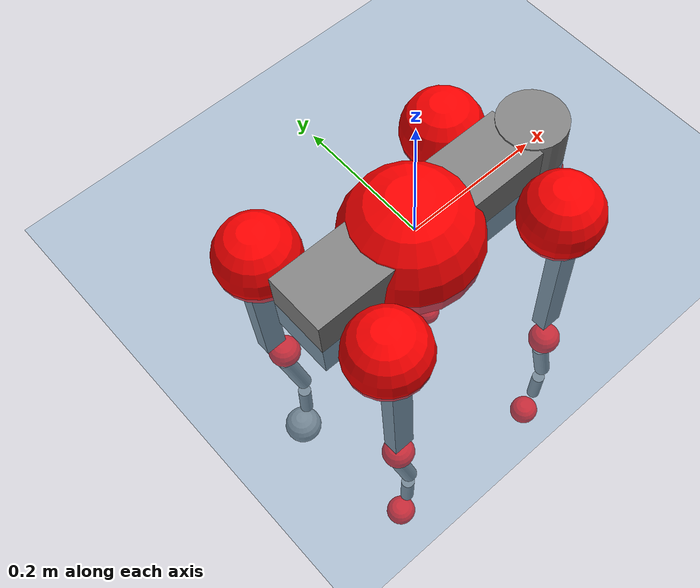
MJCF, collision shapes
<mujoco model="go2">
  <compiler angle="radian" assetdir="assets" balanceinertia="true" inertiafromgeom="false"/>

  <option timestep="0.005" density="1.2" viscosity="2e-05"/>

  <size nkey="1"/>

  <visual>
    <quality shadowsize="8192"/>
    <map shadowclip="0.5"/>
  </visual>

  <default>
    <default class="/">
      <geom contype="0" conaffinity="0" group="1" solref="-1000 -80"/>
      <site size="0.01 0.005 0.005" group="5"/>
      <general forcelimited="true" biastype="affine" gainprm="20" biasprm="0 -20 -0.5"/>
      <default class="go2">
        <joint armature="0.01" damping="0.01" frictionloss="0.2"/>
        <geom condim="1" margin="0.001"/>
        <default class="visual">
          <geom type="mesh" group="2"/>
        </default>
        <default class="collision">
          <geom group="3"/>
          <default class="foot">
            <geom size="0.022 0 0" condim="6" priority="1" friction="0.8 0.02 0.01" solimp="0.015 1 0.022"/>
          </default>
        </default>
        <default class="reward_collision_sphere">
          <geom group="5" rgba="1 0 0 1"/>
        </default>
      </default>
    </default>
  </default>

  <asset>
    <texture type="skybox" colorspace="auto" name="//unnamed_texture_0" builtin="gradient" rgb1="0.95 0.95 0.95" rgb2="0.95 0.95 0.95" width="100" height="600"/>
    <texture type="2d" colorspace="auto" name="texplane" builtin="checker" rgb1="0.345 0.575 0.748" rgb2="0.345 0.575 0.748" markrgb="1 1 1" width="512" height="512"/>
    <material name="MatPlane" class="/" texture="texplane" texuniform="true" texrepeat="2 2" specular="0.9"/>
    <material name="metal" class="/" rgba="0.9 0.95 0.95 1"/>
    <material name="black" class="/" rgba="0 0 0 1"/>
    <material name="white" class="/"/>
    <material name="gray" class="/" rgba="0.671705 0.692426 0.77427 1"/>
    <mesh name="base_0" class="/" file="base_0.obj"/>
    <mesh name="base_1" class="/" file="base_1.obj"/>
    <mesh name="base_2" class="/" file="base_2.obj"/>
    <mesh name="base_3" class="/" file="base_3.obj"/>
    <mesh name="base_4" class="/" file="base_4.obj"/>
    <mesh name="hip_0" class="/" file="hip_0.obj"/>
    <mesh name="hip_1" class="/" file="hip_1.obj"/>
    <mesh name="thigh_0" class="/" file="thigh_0.obj"/>
    <mesh name="thigh_1" class="/" file="thigh_1.obj"/>
    <mesh name="thigh_mirror_0" class="/" file="thigh_mirror_0.obj"/>
    <mesh name="thigh_mirror_1" class="/" file="thigh_mirror_1.obj"/>
    <mesh name="calf_0" class="/" file="calf_0.obj"/>
    <mesh name="calf_1" class="/" file="calf_1.obj"/>
    <mesh name="calf_mirror_0" class="/" file="calf_mirror_0.obj"/>
    <mesh name="calf_mirror_1" class="/" file="calf_mirror_1.obj"/>
    <mesh name="foot" class="/" file="foot.obj"/>
  </asset>

  <worldbody>
    <geom name="floor" class="/" size="100 100 0.125" type="plane" group="0" material="MatPlane"/>
    <light name="toplight_shadow" class="/" pos="0 0 5" dir="0.0990148 0.0990148 -0.990148" type="directional" ambient="0.04 0.04 0.04" diffuse="0.55 0.55 0.55" specular="0.12 0.12 0.12"/>
    <light name="toplight_fill" class="/" pos="0 0 5" dir="0.0990148 0.0990148 -0.990148" type="directional" castshadow="false" ambient="0.04 0.04 0.04" diffuse="0.3 0.3 0.3" specular="0.08 0.08 0.08"/>
    <body name="trunk" childclass="go2" pos="-0.0135633 -0.0068192 0.00188204" quat="0.999997 -0.0016208 -0.00144066 0.000950466">
      <inertial pos="0.0168021 0.00188453 -0.00695624" quat="0.0403153 0.706694 0.00941406 0.706307" mass="6.3882" diaginertia="0.0164147 0.0232281 0.121923"/>
      <joint name="//unnamed_joint_0" type="free" armature="0" damping="0" frictionloss="0"/>
      <geom name="//unnamed_geom_1" class="visual" material="black" mesh="base_0"/>
      <geom name="//unnamed_geom_2" class="visual" material="black" mesh="base_1"/>
      <geom name="//unnamed_geom_3" class="visual" material="black" mesh="base_2"/>
      <geom name="//unnamed_geom_4" class="visual" material="white" mesh="base_3"/>
      <geom name="//unnamed_geom_5" class="visual" material="gray" mesh="base_4"/>
      <geom name="trunk_1" class="collision" size="0.18333 0.0455644 0.0555545" type="box"/>
      <geom name="trunk_2" class="collision" size="0.048732 0.0438588" pos="0.21038 0 0.0138957" type="cylinder"/>
      <geom name="trunk_3" class="collision" size="0.0458081" pos="0.216285 0 -0.083374"/>
      <geom name="//unnamed_geom_9" class="reward_collision_sphere" size="0.097464"/>
      <geom name="//unnamed_geom_10" class="reward_collision_sphere" size="0.0584784" pos="0.206689 0 -0.0625305"/>
      <site name="imu" pos="-0.0448984 0.0153957 0.134185" size="0.0097464"/>
      <camera name="track" pos="0 -1.59236 0" quat="0.707107 0.707107 0 0" mode="trackcom"/>
      <camera name="ego_camera" pos="0.230311 0 0.0625305" quat="-0.5 -0.5 0.5 0.5"/>
      <body name="FL_hip" pos="0.141144 0.036355 0.00920191" quat="0.99998 0.00403598 -0.00303182 0.00382552">
        <inertial pos="0.0105149 0.00857597 -4.92835e-05" quat="0.497439 0.499868 0.505609 0.497038" mass="0.670749" diaginertia="0.000206726 0.000219769 0.0026088"/>
        <joint name="FL_hip_joint" pos="0 0 0" axis="0.996622 0.0690218 0.0445012" stiffness="0.0686097" range="-1.00786 1.03686" armature="0.0165907" damping="0" frictionloss="0.116174"/>
        <geom name="//unnamed_geom_11" class="visual" material="metal" mesh="hip_0"/>
        <geom name="//unnamed_geom_12" class="visual" material="gray" mesh="hip_1"/>
        <geom name="//unnamed_geom_13" class="collision" size="0.0448334 0.0194928" pos="0 0.0636943 0" quat="0.707107 0.707107 0 0" type="cylinder"/>
        <geom name="//unnamed_geom_14" class="reward_collision_sphere" size="0.0584784" pos="0 0.0557325 0"/>
        <body name="FL_thigh" pos="0.00998246 0.0749233 0.00871383" quat="0.999993 -0.00318465 -0.00185282 -8.67401e-06">
          <inertial pos="-0.00102558 -0.0193065 -0.0298412" quat="0.815145 0.0583966 -0.0142439 0.57613" mass="1.12861" diaginertia="0.00139003 0.00200387 0.00495381"/>
          <joint name="FL_thigh_joint" pos="0 0 0" axis="0.0428929 0.999075 -0.00298741" stiffness="0.0485295" range="-1.71625 3.50322" armature="0.00306472" damping="0.0485809" frictionloss="0.283997"/>
          <geom name="//unnamed_geom_15" class="visual" material="metal" mesh="thigh_0"/>
          <geom name="//unnamed_geom_16" class="visual" material="gray" mesh="thigh_1"/>
          <geom name="//unnamed_geom_17" class="collision" size="0.103799 0.0119393 0.0165689" pos="0 0 -0.147989" quat="0.707107 0 0.707107 0" type="box"/>
          <body name="FL_calf" pos="-0.00080348 0.0159792 -0.294689" quat="0.999985 0.00228891 -0.0014961 0.00470243">
            <inertial pos="-0.00330189 0.00409826 -0.197274" quat="0.682101 0.058466 0.0184032 0.728685" mass="0.173491" diaginertia="0.000329188 0.000414332 0.00028114"/>
            <joint name="FL_calf_joint" pos="0 0 0" axis="0.00301431 0.999527 -0.0306175" range="-2.7285 -0.769791" armature="0.00915543" damping="0.0575891" frictionloss="0.172085"/>
            <geom name="//unnamed_geom_18" class="visual" material="gray" mesh="calf_0"/>
            <geom name="//unnamed_geom_19" class="visual" material="black" mesh="calf_1"/>
            <geom name="FL_calf0" class="collision" size="0.0116957 0.0584784" pos="0.0059054 0 -0.083374" quat="0.994493 0 -0.104807 0" type="cylinder"/>
            <geom name="//unnamed_geom_21" class="collision" size="0.010721 0.0316758" pos="0.0147635 0 -0.205656" quat="0.999688 0 0.0249974 0" type="cylinder"/>
            <geom name="//unnamed_geom_22" class="visual" pos="0 0 -0.295978" quat="1 0 0 0" material="black" mesh="foot"/>
            <geom name="FL_foot" class="foot" size="0.0127113" pos="-0.00147635 0 -0.295978"/>
            <geom name="//unnamed_geom_24" class="reward_collision_sphere" size="0.024366"/>
            <geom name="//unnamed_geom_25" class="reward_collision_sphere" size="0.024366" pos="-0.00147635 0 -0.295978"/>
            <site name="FL_foot" class="foot" pos="-0.00147635 0 -0.295978" size="0.0097464"/>
          </body>
        </body>
      </body>
      <body name="FR_hip" pos="0.158482 -0.0522816 0.0123127" quat="1 -0.000414219 0.00058604 -0.000221468">
        <inertial pos="-0.0193132 -0.00671677 0.0139441" quat="0.475566 0.519356 0.47428 0.528361" mass="0.491143" diaginertia="0.000161083 0.000175184 0.00201554"/>
        <joint name="FR_hip_joint" pos="0 0 0" axis="0.997772 -0.0263935 -0.0612779" range="-0.760916 0.989054" armature="0.0104711" damping="0" frictionloss="0.317842"/>
        <geom name="//unnamed_geom_26" class="visual" pos="0 -5.16935e-09 -2.21724e-07" quat="4.63268e-05 1 0 0" material="metal" mesh="hip_0"/>
        <geom name="//unnamed_geom_27" class="visual" pos="0 -8.38013e-09 5.48408e-07" quat="4.63268e-05 1 0 0" material="gray" mesh="hip_1"/>
        <geom name="//unnamed_geom_28" class="collision" size="0.0448334 0.0194928" pos="0 -0.0636943 0" quat="0.707107 0.707107 0 0" type="cylinder"/>
        <geom name="//unnamed_geom_29" class="reward_collision_sphere" size="0.0584784" pos="0 -0.0557325 0"/>
        <body name="FR_thigh" pos="-0.000132855 -0.0703583 -0.00931534" quat="1 -5.12042e-05 -9.05606e-06 0.000101211">
          <inertial pos="0.00563479 0.00126174 -0.0505974" quat="0.550432 -0.0233803 0.0829321 0.830422" mass="0.986873" diaginertia="0.00127714 0.00165326 0.00417499"/>
          <joint name="FR_thigh_joint" pos="0 0 0" axis="-0.0347682 -0.998654 0.0384902" range="-3.43387 1.40565" armature="0.0126016" damping="0.0593871" frictionloss="0.156245"/>
          <geom name="//unnamed_geom_30" class="visual" material="metal" mesh="thigh_mirror_0"/>
          <geom name="//unnamed_geom_31" class="visual" material="gray" mesh="thigh_mirror_1"/>
          <geom name="//unnamed_geom_32" class="collision" size="0.103799 0.0119393 0.0165689" pos="0 0 -0.147989" quat="0.707107 0 0.707107 0" type="box"/>
          <body name="FR_calf" pos="0.000742425 -0.00548423 -0.308762" quat="0.99997 0.00514892 -0.00217219 -0.00531734">
            <inertial pos="-0.0119671 0.010601 -0.209108" quat="0.713315 0.00719098 -0.00357692 0.700797" mass="0.269577" diaginertia="0.000304624 0.00040859 0.000231338"/>
            <joint name="FR_calf_joint" pos="0 0 0" axis="0.0240044 -0.999598 0.0150669" range="1.12984 2.75792" armature="0.00807798" damping="0" frictionloss="0.0649895"/>
            <geom name="//unnamed_geom_33" class="visual" material="gray" mesh="calf_mirror_0"/>
            <geom name="//unnamed_geom_34" class="visual" material="black" mesh="calf_mirror_1"/>
            <geom name="FR_calf0" class="collision" size="0.0126703 0.0584784" pos="0.00738176 0 -0.083374" quat="0.995004 0 -0.0998334 0" type="cylinder"/>
            <geom name="//unnamed_geom_36" class="collision" size="0.010721 0.0316758" pos="0.0147635 0 -0.205656" quat="0.999688 0 0.0249974 0" type="cylinder"/>
            <geom name="//unnamed_geom_37" class="visual" pos="0 0 -0.295978" quat="1 0 0 0" material="black" mesh="foot"/>
            <geom name="FR_foot" class="foot" size="0.0234777" pos="-0.00147635 0 -0.295978"/>
            <geom name="//unnamed_geom_39" class="reward_collision_sphere" size="0.024366"/>
            <geom name="//unnamed_geom_40" class="reward_collision_sphere" size="0.024366" pos="-0.00147635 0 -0.295978"/>
            <site name="FR_foot" class="foot" pos="-0.00147635 0 -0.295978" size="0.0097464"/>
          </body>
        </body>
      </body>
      <body name="RL_hip" pos="-0.159642 0.0502917 0.00673386" quat="0.999996 0.000885782 -0.00125135 0.00225908">
        <inertial pos="-0.0107238 0.0178253 0.000524229" quat="0.545311 0.481301 0.515248 0.453326" mass="0.688085" diaginertia="0.000205311 0.000191858 0.0028769"/>
        <joint name="RL_hip_joint" pos="0 0 0" axis="-0.999296 -0.0267764 -0.0262877" stiffness="0.00408664" range="-1.26044 0.912598" armature="0.00951321" damping="0.0179638" frictionloss="0.255486"/>
        <geom name="//unnamed_geom_41" class="visual" pos="5.67465e-09 0 1.11236e-06" quat="4.63268e-05 0 1 0" material="metal" mesh="hip_0"/>
        <geom name="//unnamed_geom_42" class="visual" pos="9.19928e-09 0 9.86506e-07" quat="4.63268e-05 0 1 0" material="gray" mesh="hip_1"/>
        <geom name="//unnamed_geom_43" class="collision" size="0.0448334 0.0194928" pos="0 0.0636943 0" quat="0.707107 0.707107 0 0" type="cylinder"/>
        <geom name="//unnamed_geom_44" class="reward_collision_sphere" size="0.0584784" pos="0 0.0557325 0"/>
        <body name="RL_thigh" pos="-0.0088089 0.0693034 0.000928356" quat="0.999995 0.0023234 -0.00229658 0.000260147">
          <inertial pos="-0.00705526 -0.0328026 -0.0469066" quat="0.83831 0.027481 -0.0198678 0.544138" mass="0.87037" diaginertia="0.00127108 0.00157841 0.00470939"/>
          <joint name="RL_thigh_joint" pos="0 0 0" axis="-0.0659911 0.997564 0.0226017" stiffness="0.0551379" range="-0.73647 4.34103" armature="0.00313938" damping="0" frictionloss="0.0711236"/>
          <geom name="//unnamed_geom_45" class="visual" material="metal" mesh="thigh_0"/>
          <geom name="//unnamed_geom_46" class="visual" material="gray" mesh="thigh_1"/>
          <geom name="//unnamed_geom_47" class="collision" size="0.103799 0.0119393 0.0165689" pos="0 0 -0.147989" quat="0.707107 0 0.707107 0" type="box"/>
          <body name="RL_calf" pos="0.00982466 -0.0123229 -0.280262" quat="0.999968 -0.00264078 0.0049367 0.00565915">
            <inertial pos="0.00224847 7.50703e-05 -0.213246" quat="0.733771 -0.0186616 0.0148881 0.678978" mass="0.262939" diaginertia="0.000330304 0.000513887 0.000273027"/>
            <joint name="RL_calf_joint" pos="0 0 0" axis="0.000979105 0.999421 -0.0340059" stiffness="0.0387823" range="-2.8179 -0.639036" armature="0.00757444" damping="0.0106054" frictionloss="0.310104"/>
            <geom name="//unnamed_geom_48" class="visual" material="gray" mesh="calf_0"/>
            <geom name="//unnamed_geom_49" class="visual" material="black" mesh="calf_1"/>
            <geom name="RL_calf0" class="collision" size="0.0126703 0.0584784" pos="0.00738176 0 -0.083374" quat="0.995004 0 -0.0998334 0" type="cylinder"/>
            <geom name="//unnamed_geom_51" class="collision" size="0.010721 0.0316758" pos="0.0147635 0 -0.205656" quat="0.999688 0 0.0249974 0" type="cylinder"/>
            <geom name="//unnamed_geom_52" class="visual" pos="0 0 -0.295978" quat="1 0 0 0" material="black" mesh="foot"/>
            <geom name="RL_foot" class="foot" size="0.0314107" pos="-0.00147635 0 -0.295978"/>
            <geom name="//unnamed_geom_54" class="reward_collision_sphere" size="0.024366"/>
            <geom name="//unnamed_geom_55" class="reward_collision_sphere" size="0.024366" pos="-0.00147635 0 -0.295978"/>
            <site name="RL_foot" class="foot" pos="-0.00147635 0 -0.295978" size="0.0097464"/>
          </body>
        </body>
      </body>
      <body name="RR_hip" pos="-0.127999 -0.0443002 0.00427706" quat="0.999995 -0.00260441 -0.00174292 -0.00025904">
        <inertial pos="-0.00710616 -0.0101521 0.000308696" quat="0.469124 0.46703 0.491141 0.566203" mass="0.664401" diaginertia="0.000179713 0.000174421 0.00228687"/>
        <joint name="RR_hip_joint" pos="0 0 0" axis="-0.997068 -0.0580547 0.0498483" stiffness="0.0174563" range="-1.03506 0.928817" armature="0.0133614" damping="0" frictionloss="0.188831"/>
        <geom name="//unnamed_geom_56" class="visual" pos="-5.67264e-09 -5.16935e-09 1.33409e-06" quat="2.14617e-09 4.63268e-05 4.63268e-05 -1" material="metal" mesh="hip_0"/>
        <geom name="//unnamed_geom_57" class="visual" pos="-9.20425e-09 -8.38013e-09 4.38098e-07" quat="2.14617e-09 4.63268e-05 4.63268e-05 -1" material="gray" mesh="hip_1"/>
        <geom name="//unnamed_geom_58" class="collision" size="0.0448334 0.0194928" pos="0 -0.0636943 0" quat="0.707107 0.707107 0 0" type="cylinder"/>
        <geom name="//unnamed_geom_59" class="reward_collision_sphere" size="0.0584784" pos="0 -0.0557325 0"/>
        <body name="RR_thigh" pos="-0.00276806 -0.0711232 -0.0135301" quat="0.999995 0.00283686 -0.000776286 0.00152946">
          <inertial pos="-0.00769049 0.0193579 -0.0510425" quat="0.510643 0.00516766 0.0277494 0.859329" mass="1.12718" diaginertia="0.00132042 0.00157256 0.00362059"/>
          <joint name="RR_thigh_joint" pos="0 0 0" axis="-0.0127114 -0.999689 -0.0214405" stiffness="0.054701" range="-4.54557 0.397006" armature="0.00421155" damping="0.0694913" frictionloss="0.275033"/>
          <geom name="//unnamed_geom_60" class="visual" material="metal" mesh="thigh_mirror_0"/>
          <geom name="//unnamed_geom_61" class="visual" material="gray" mesh="thigh_mirror_1"/>
          <geom name="//unnamed_geom_62" class="collision" size="0.103799 0.0119393 0.0165689" pos="0 0 -0.147989" quat="0.707107 0 0.707107 0" type="box"/>
          <body name="RR_calf" pos="-0.00153313 0.000550854 -0.293506" quat="1 7.74864e-05 0.000136807 1.24258e-05">
            <inertial pos="0.0180408 0.0159758 -0.211138" quat="0.707954 0.00022571 -0.000873657 0.706258" mass="0.193492" diaginertia="0.000379701 0.000403576 0.000285897"/>
            <joint name="RR_calf_joint" pos="0 0 0" axis="0.0081217 -0.999581 0.0277727" stiffness="0.016952" range="0.965054 2.42957" armature="0.0101958" damping="0" frictionloss="0.0496668"/>
            <geom name="//unnamed_geom_63" class="visual" material="gray" mesh="calf_mirror_0"/>
            <geom name="//unnamed_geom_64" class="visual" material="black" mesh="calf_mirror_1"/>
            <geom name="RR_calf0" class="collision" size="0.0126703 0.0584784" pos="0.00738176 0 -0.083374" quat="0.995004 0 -0.0998334 0" type="cylinder"/>
            <geom name="//unnamed_geom_66" class="collision" size="0.010721 0.0316758" pos="0.0147635 0 -0.205656" quat="0.999688 0 0.0249974 0" type="cylinder"/>
            <geom name="//unnamed_geom_67" class="visual" pos="0 0 -0.295978" quat="1 0 0 0" material="black" mesh="foot"/>
            <geom name="RR_foot" class="foot" size="0.0098843" pos="-0.00147635 0 -0.295978"/>
            <geom name="//unnamed_geom_69" class="reward_collision_sphere" size="0.024366"/>
            <geom name="//unnamed_geom_70" class="reward_collision_sphere" size="0.024366" pos="-0.00147635 0 -0.295978"/>
            <site name="RR_foot" class="foot" pos="-0.00147635 0 -0.295978" size="0.0097464"/>
          </body>
        </body>
      </body>
    </body>
  </worldbody>

  <contact>
    <pair class="/" geom1="floor" geom2="FL_foot" name="//unnamed_contact_0"/>
    <pair class="/" geom1="floor" geom2="FR_foot" name="//unnamed_contact_1"/>
    <pair class="/" geom1="floor" geom2="RL_foot" name="//unnamed_contact_2"/>
    <pair class="/" geom1="floor" geom2="RR_foot" name="//unnamed_contact_3"/>
  </contact>

  <actuator>
    <general name="FL_hip" class="/" joint="FL_hip_joint" forcerange="-22.916 22.916" gainprm="19.9339" biasprm="0 -19.9339 -0.417531"/>
    <general name="FL_thigh" class="/" joint="FL_thigh_joint" forcerange="-34.0731 34.0731" gainprm="19.9339" biasprm="0 -19.9339 -0.417531"/>
    <general name="FL_calf" class="/" joint="FL_calf_joint" forcerange="-32.1965 32.1965" gainprm="19.9339" biasprm="0 -19.9339 -0.417531"/>
    <general name="FR_hip" class="/" joint="FR_hip_joint" forcerange="-23.6801 23.6801" gainprm="19.9339" biasprm="0 -19.9339 -0.417531"/>
    <general name="FR_thigh" class="/" joint="FR_thigh_joint" forcerange="-20.6411 20.6411" gainprm="19.9339" biasprm="0 -19.9339 -0.417531"/>
    <general name="FR_calf" class="/" joint="FR_calf_joint" forcerange="-28.6551 28.6551" gainprm="19.9339" biasprm="0 -19.9339 -0.417531"/>
    <general name="RL_hip" class="/" joint="RL_hip_joint" forcerange="-23.9147 23.9147" gainprm="19.9339" biasprm="0 -19.9339 -0.417531"/>
    <general name="RL_thigh" class="/" joint="RL_thigh_joint" forcerange="-14.6555 14.6555" gainprm="19.9339" biasprm="0 -19.9339 -0.417531"/>
    <general name="RL_calf" class="/" joint="RL_calf_joint" forcerange="-59.1745 59.1745" gainprm="19.9339" biasprm="0 -19.9339 -0.417531"/>
    <general name="RR_hip" class="/" joint="RR_hip_joint" forcerange="-24.5298 24.5298" gainprm="19.9339" biasprm="0 -19.9339 -0.417531"/>
    <general name="RR_thigh" class="/" joint="RR_thigh_joint" forcerange="-18.1633 18.1633" gainprm="19.9339" biasprm="0 -19.9339 -0.417531"/>
    <general name="RR_calf" class="/" joint="RR_calf_joint" forcerange="-70.7311 70.7311" gainprm="19.9339" biasprm="0 -19.9339 -0.417531"/>
  </actuator>

  <sensor>
    <gyro site="imu" name="imu_angular_velocity"/>
    <velocimeter site="imu" name="imu_linear_velocity"/>
    <framelinvel objtype="site" objname="FL_foot" name="FL_foot_global_linear_velocity"/>
    <framelinvel objtype="site" objname="FR_foot" name="FR_foot_global_linear_velocity"/>
    <framelinvel objtype="site" objname="RL_foot" name="RL_foot_global_linear_velocity"/>
    <framelinvel objtype="site" objname="RR_foot" name="RR_foot_global_linear_velocity"/>
  </sensor>

  <keyframe>
    <key name="home" qpos="0 0 0.325 1 0 0 0 0.1 0.8 -1.5 -0.1 -0.8 1.5 -0.1 0.8 -1.5 0.1 -0.8 1.5"/>
  </keyframe>
</mujoco>
